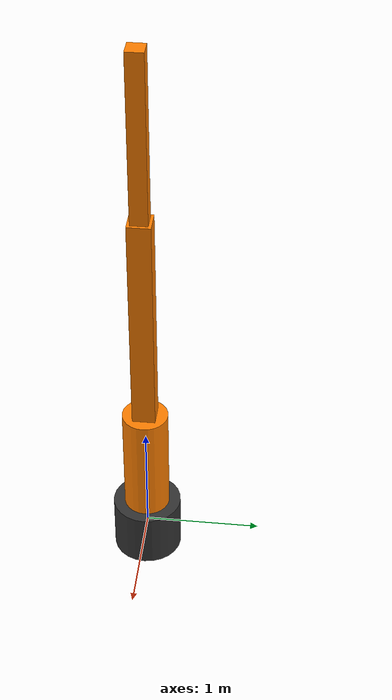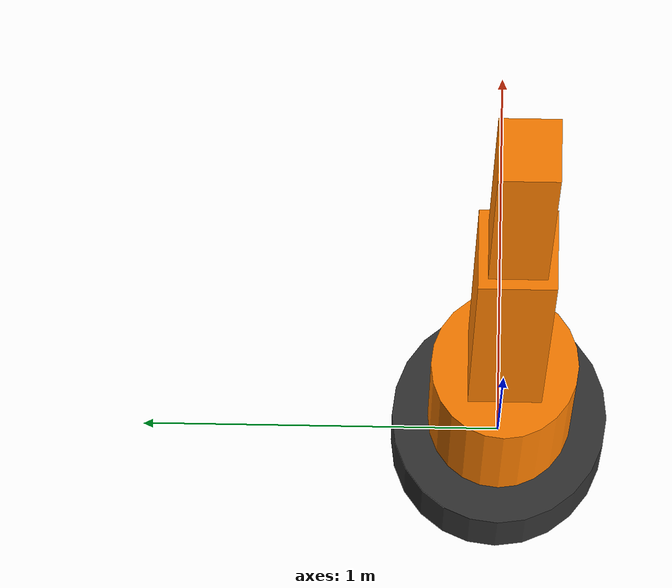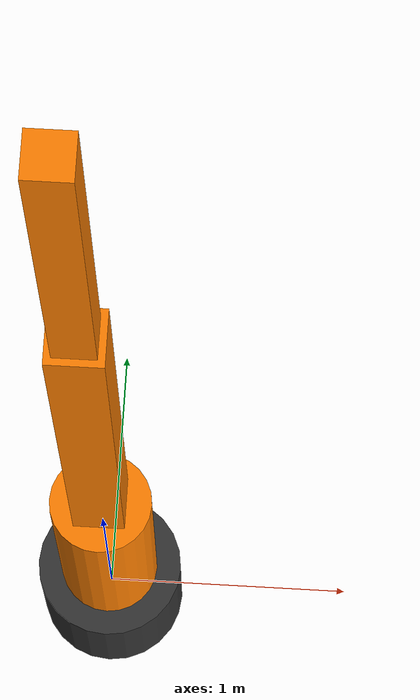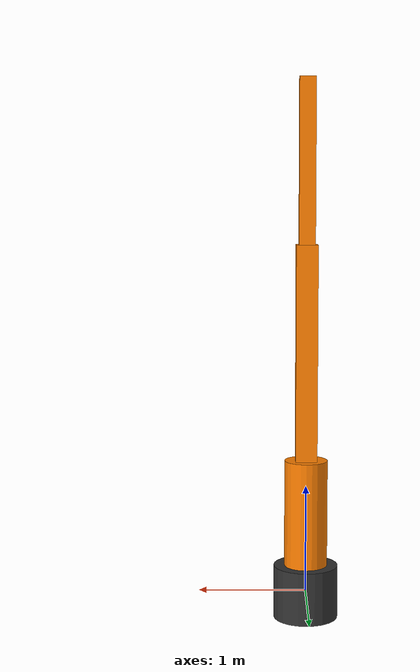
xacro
<?xml version="1.0"?>
<robot name="workcell_arm" xmlns:xacro="http://www.ros.org/wiki/xacro">
  <xacro:arg name="namespace" default="arm_01"/>
  <xacro:property name="ns" value="$(arg namespace)"/>

  <link name="base_link">
    <visual>
      <geometry><cylinder radius="0.3" length="0.5"/></geometry>
      <material name="dark_grey"><color rgba="0.2 0.2 0.2 1.0"/></material>
    </visual>
    <collision>
      <geometry><cylinder radius="0.3" length="0.5"/></geometry>
    </collision>
    <inertial>
      <mass value="50.0"/>
      <inertia ixx="1.5" ixy="0" ixz="0" iyy="1.5" iyz="0" izz="2.0"/>
    </inertial>
  </link>

  <link name="link1">
    <visual>
      <origin xyz="0 0 0.5" rpy="0 0 0"/>
      <geometry><cylinder radius="0.2" length="1.0"/></geometry>
      <material name="orange"><color rgba="1.0 0.5 0.0 1.0"/></material>
    </visual>
    <collision>
      <origin xyz="0 0 0.5" rpy="0 0 0"/>
      <geometry><cylinder radius="0.2" length="1.0"/></geometry>
    </collision>
    <inertial>
      <origin xyz="0 0 0.5" rpy="0 0 0"/>
      <mass value="20.0"/>
      <inertia ixx="1.6" ixy="0" ixz="0" iyy="1.6" iyz="0" izz="0.4"/>
    </inertial>
  </link>
  <joint name="joint1" type="revolute">
    <parent link="base_link"/>
    <child link="link1"/>
    <origin xyz="0 0 0.25" rpy="0 0 0"/>
    <axis xyz="0 0 1"/>
    <dynamics damping="5.0" friction="1.0"/>
    <limit lower="-3.14" upper="3.14" effort="500" velocity="2.0"/>
  </joint>

  <link name="link2">
    <visual>
      <origin xyz="0 0 1.0" rpy="0 0 0"/>
      <geometry><box size="0.2 0.2 2.0"/></geometry>
      <material name="orange"><color rgba="1.0 0.5 0.0 1.0"/></material>
    </visual>
    <collision>
      <origin xyz="0 0 1.0" rpy="0 0 0"/>
      <geometry><box size="0.2 0.2 2.0"/></geometry>
    </collision>
    <inertial>
      <origin xyz="0 0 1.0" rpy="0 0 0"/>
      <mass value="15.0"/>
      <inertia ixx="5.0" ixy="0" ixz="0" iyy="5.0" iyz="0" izz="0.1"/>
    </inertial>
  </link>
  <joint name="joint2" type="revolute">
    <parent link="link1"/>
    <child link="link2"/>
    <origin xyz="0 0 1.0" rpy="0 0 0"/>
    <axis xyz="0 1 0"/>
    <dynamics damping="5.0" friction="1.0"/>
    <limit lower="-1.57" upper="1.57" effort="500" velocity="2.0"/>
  </joint>

  <link name="link3">
    <visual>
      <origin xyz="0 0 0.75" rpy="0 0 0"/>
      <geometry><box size="0.15 0.15 1.5"/></geometry>
      <material name="orange"><color rgba="1.0 0.5 0.0 1.0"/></material>
    </visual>
    <collision>
      <origin xyz="0 0 0.75" rpy="0 0 0"/>
      <geometry><box size="0.15 0.15 1.5"/></geometry>
    </collision>
    <inertial>
      <origin xyz="0 0 0.75" rpy="0 0 0"/>
      <mass value="10.0"/>
      <inertia ixx="1.8" ixy="0" ixz="0" iyy="1.8" iyz="0" izz="0.05"/>
    </inertial>
  </link>
  <joint name="joint3" type="revolute">
    <parent link="link2"/>
    <child link="link3"/>
    <origin xyz="0 0 2.0" rpy="0 0 0"/>
    <axis xyz="0 1 0"/>
    <dynamics damping="2.0" friction="0.5"/>
    <limit lower="-2.5" upper="2.5" effort="300" velocity="3.0"/>
  </joint>

  <gazebo>
    <plugin filename="gz-sim-joint-position-controller-system" name="gz::sim::systems::JointPositionController">
      <joint_name>joint1</joint_name>
      <topic>/${ns}/joint1/cmd_pos</topic>
      <p_gain>10000</p_gain><d_gain>500</d_gain>
    </plugin>
    <plugin filename="gz-sim-joint-position-controller-system" name="gz::sim::systems::JointPositionController">
      <joint_name>joint2</joint_name>
      <topic>/${ns}/joint2/cmd_pos</topic>
      <p_gain>10000</p_gain><d_gain>500</d_gain>
    </plugin>
    <plugin filename="gz-sim-joint-position-controller-system" name="gz::sim::systems::JointPositionController">
      <joint_name>joint3</joint_name>
      <topic>/${ns}/joint3/cmd_pos</topic>
      <p_gain>8000</p_gain><d_gain>300</d_gain>
    </plugin>
  </gazebo>
</robot>
